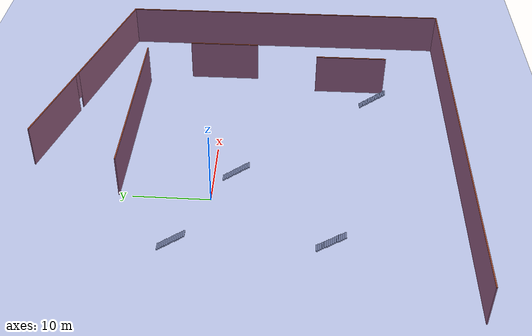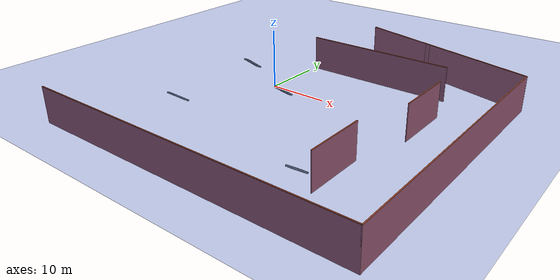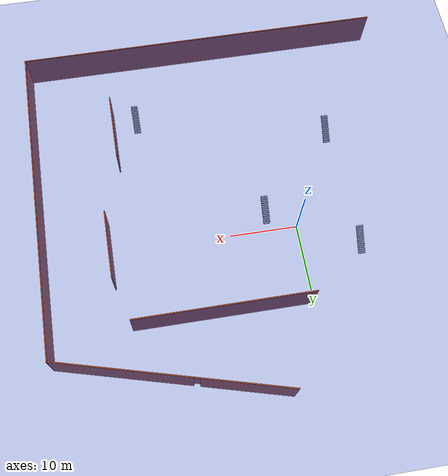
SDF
<sdf version="1.6">
 <world name="vrc_task_1">
  <model name="indoor2">
   <pose>9.73091 -3.78901 0 0 -0 0</pose>
   <link name="Stairs_5">
    <visual name="Stairs_5_Visual_0">
     <pose>-5.472 2.52937 0.083333 0 -0 0</pose>
     <geometry><box><size>1 0.233333 0.166667</size></box></geometry>
     <material>
      <script><uri>file://media/materials/scripts/gazebo.material</uri><name>Gazebo/Grey</name></script>
      <ambient>1 1 1 1</ambient>
     </material>
     <meta><layer>0</layer></meta>
    </visual>
    <collision name="Stairs_5_Collision_0">
     <geometry><box><size>1 0.233333 0.166667</size></box></geometry>
     <pose>-5.472 2.52937 0.083333 0 -0 0</pose>
    </collision>
    <visual name="Stairs_5_Visual_1">
     <pose>-5.472 2.29604 0.25 0 -0 0</pose>
     <geometry><box><size>1 0.233333 0.166667</size></box></geometry>
     <material>
      <script><uri>file://media/materials/scripts/gazebo.material</uri><name>Gazebo/Grey</name></script>
      <ambient>1 1 1 1</ambient>
     </material>
     <meta><layer>0</layer></meta>
    </visual>
    <collision name="Stairs_5_Collision_1">
     <geometry><box><size>1 0.233333 0.166667</size></box></geometry>
     <pose>-5.472 2.29604 0.25 0 -0 0</pose>
    </collision>
    <visual name="Stairs_5_Visual_2">
     <pose>-5.472 2.06271 0.416667 0 -0 0</pose>
     <geometry><box><size>1 0.233333 0.166667</size></box></geometry>
     <material>
      <script><uri>file://media/materials/scripts/gazebo.material</uri><name>Gazebo/Grey</name></script>
      <ambient>1 1 1 1</ambient>
     </material>
     <meta><layer>0</layer></meta>
    </visual>
    <collision name="Stairs_5_Collision_2">
     <geometry><box><size>1 0.233333 0.166667</size></box></geometry>
     <pose>-5.472 2.06271 0.416667 0 -0 0</pose>
    </collision>
    <visual name="Stairs_5_Visual_3">
     <pose>-5.472 1.82937 0.583333 0 -0 0</pose>
     <geometry><box><size>1 0.233333 0.166667</size></box></geometry>
     <material>
      <script><uri>file://media/materials/scripts/gazebo.material</uri><name>Gazebo/Grey</name></script>
      <ambient>1 1 1 1</ambient>
     </material>
     <meta><layer>0</layer></meta>
    </visual>
    <collision name="Stairs_5_Collision_3">
     <geometry><box><size>1 0.233333 0.166667</size></box></geometry>
     <pose>-5.472 1.82937 0.583333 0 -0 0</pose>
    </collision>
    <visual name="Stairs_5_Visual_4">
     <pose>-5.472 1.59604 0.75 0 -0 0</pose>
     <geometry><box><size>1 0.233333 0.166667</size></box></geometry>
     <material>
      <script><uri>file://media/materials/scripts/gazebo.material</uri><name>Gazebo/Grey</name></script>
      <ambient>1 1 1 1</ambient>
     </material>
     <meta><layer>0</layer></meta>
    </visual>
    <collision name="Stairs_5_Collision_4">
     <geometry><box><size>1 0.233333 0.166667</size></box></geometry>
     <pose>-5.472 1.59604 0.75 0 -0 0</pose>
    </collision>
    <visual name="Stairs_5_Visual_5">
     <pose>-5.472 1.36271 0.916667 0 -0 0</pose>
     <geometry><box><size>1 0.233333 0.166667</size></box></geometry>
     <material>
      <script><uri>file://media/materials/scripts/gazebo.material</uri><name>Gazebo/Grey</name></script>
      <ambient>1 1 1 1</ambient>
     </material>
     <meta><layer>0</layer></meta>
    </visual>
    <collision name="Stairs_5_Collision_5">
     <geometry><box><size>1 0.233333 0.166667</size></box></geometry>
     <pose>-5.472 1.36271 0.916667 0 -0 0</pose>
    </collision>
    <visual name="Stairs_5_Visual_6">
     <pose>-5.472 1.12938 1.08333 0 -0 0</pose>
     <geometry><box><size>1 0.233333 0.166667</size></box></geometry>
     <material>
      <script><uri>file://media/materials/scripts/gazebo.material</uri><name>Gazebo/Grey</name></script>
      <ambient>1 1 1 1</ambient>
     </material>
     <meta><layer>0</layer></meta>
    </visual>
    <collision name="Stairs_5_Collision_6">
     <geometry><box><size>1 0.233333 0.166667</size></box></geometry>
     <pose>-5.472 1.12938 1.08333 0 -0 0</pose>
    </collision>
    <visual name="Stairs_5_Visual_7">
     <pose>-5.472 0.896041 1.25 0 -0 0</pose>
     <geometry><box><size>1 0.233333 0.166667</size></box></geometry>
     <material>
      <script><uri>file://media/materials/scripts/gazebo.material</uri><name>Gazebo/Grey</name></script>
      <ambient>1 1 1 1</ambient>
     </material>
     <meta><layer>0</layer></meta>
    </visual>
    <collision name="Stairs_5_Collision_7">
     <geometry><box><size>1 0.233333 0.166667</size></box></geometry>
     <pose>-5.472 0.896041 1.25 0 -0 0</pose>
    </collision>
    <visual name="Stairs_5_Visual_8">
     <pose>-5.472 0.662708 1.41667 0 -0 0</pose>
     <geometry><box><size>1 0.233333 0.166667</size></box></geometry>
     <material>
      <script><uri>file://media/materials/scripts/gazebo.material</uri><name>Gazebo/Grey</name></script>
      <ambient>1 1 1 1</ambient>
     </material>
     <meta><layer>0</layer></meta>
    </visual>
    <collision name="Stairs_5_Collision_8">
     <geometry><box><size>1 0.233333 0.166667</size></box></geometry>
     <pose>-5.472 0.662708 1.41667 0 -0 0</pose>
    </collision>
    <visual name="Stairs_5_Visual_9">
     <pose>-5.472 0.429375 1.58333 0 -0 0</pose>
     <geometry><box><size>1 0.233333 0.166667</size></box></geometry>
     <material>
      <script><uri>file://media/materials/scripts/gazebo.material</uri><name>Gazebo/Grey</name></script>
      <ambient>1 1 1 1</ambient>
     </material>
     <meta><layer>0</layer></meta>
    </visual>
    <collision name="Stairs_5_Collision_9">
     <geometry><box><size>1 0.233333 0.166667</size></box></geometry>
     <pose>-5.472 0.429375 1.58333 0 -0 0</pose>
    </collision>
    <visual name="Stairs_5_Visual_10">
     <pose>-5.472 0.196041 1.75 0 -0 0</pose>
     <geometry><box><size>1 0.233333 0.166667</size></box></geometry>
     <material>
      <script><uri>file://media/materials/scripts/gazebo.material</uri><name>Gazebo/Grey</name></script>
      <ambient>1 1 1 1</ambient>
     </material>
     <meta><layer>0</layer></meta>
    </visual>
    <collision name="Stairs_5_Collision_10">
     <geometry><box><size>1 0.233333 0.166667</size></box></geometry>
     <pose>-5.472 0.196041 1.75 0 -0 0</pose>
    </collision>
    <visual name="Stairs_5_Visual_11">
     <pose>-5.472 -0.037292 1.91667 0 -0 0</pose>
     <geometry><box><size>1 0.233333 0.166667</size></box></geometry>
     <material>
      <script><uri>file://media/materials/scripts/gazebo.material</uri><name>Gazebo/Grey</name></script>
      <ambient>1 1 1 1</ambient>
     </material>
     <meta><layer>0</layer></meta>
    </visual>
    <collision name="Stairs_5_Collision_11">
     <geometry><box><size>1 0.233333 0.166667</size></box></geometry>
     <pose>-5.472 -0.037292 1.91667 0 -0 0</pose>
    </collision>
    <visual name="Stairs_5_Visual_12">
     <pose>-5.472 -0.270625 2.08333 0 -0 0</pose>
     <geometry><box><size>1 0.233333 0.166667</size></box></geometry>
     <material>
      <script><uri>file://media/materials/scripts/gazebo.material</uri><name>Gazebo/Grey</name></script>
      <ambient>1 1 1 1</ambient>
     </material>
     <meta><layer>0</layer></meta>
    </visual>
    <collision name="Stairs_5_Collision_12">
     <geometry><box><size>1 0.233333 0.166667</size></box></geometry>
     <pose>-5.472 -0.270625 2.08333 0 -0 0</pose>
    </collision>
    <visual name="Stairs_5_Visual_13">
     <pose>-5.472 -0.503959 2.25 0 -0 0</pose>
     <geometry><box><size>1 0.233333 0.166667</size></box></geometry>
     <material>
      <script><uri>file://media/materials/scripts/gazebo.material</uri><name>Gazebo/Grey</name></script>
      <ambient>1 1 1 1</ambient>
     </material>
     <meta><layer>0</layer></meta>
    </visual>
    <collision name="Stairs_5_Collision_13">
     <geometry><box><size>1 0.233333 0.166667</size></box></geometry>
     <pose>-5.472 -0.503959 2.25 0 -0 0</pose>
    </collision>
    <visual name="Stairs_5_Visual_14">
     <pose>-5.472 -0.737292 2.41667 0 -0 0</pose>
     <geometry><box><size>1 0.233333 0.166667</size></box></geometry>
     <material>
      <script><uri>file://media/materials/scripts/gazebo.material</uri><name>Gazebo/Grey</name></script>
      <ambient>1 1 1 1</ambient>
     </material>
     <meta><layer>0</layer></meta>
    </visual>
    <collision name="Stairs_5_Collision_14">
     <geometry><box><size>1 0.233333 0.166667</size></box></geometry>
     <pose>-5.472 -0.737292 2.41667 0 -0 0</pose>
    </collision>
   </link>
   <link name="Stairs_6">
    <visual name="Stairs_6_Visual_0">
     <pose>-18.3425 9.33587 0.083333 0 -0 0</pose>
     <geometry><box><size>1 0.233333 0.166667</size></box></geometry>
     <material>
      <script><uri>file://media/materials/scripts/gazebo.material</uri><name>Gazebo/Grey</name></script>
      <ambient>1 1 1 1</ambient>
     </material>
     <meta><layer>0</layer></meta>
    </visual>
    <collision name="Stairs_6_Collision_0">
     <geometry><box><size>1 0.233333 0.166667</size></box></geometry>
     <pose>-18.3425 9.33587 0.083333 0 -0 0</pose>
    </collision>
    <visual name="Stairs_6_Visual_1">
     <pose>-18.3425 9.10254 0.25 0 -0 0</pose>
     <geometry><box><size>1 0.233333 0.166667</size></box></geometry>
     <material>
      <script><uri>file://media/materials/scripts/gazebo.material</uri><name>Gazebo/Grey</name></script>
      <ambient>1 1 1 1</ambient>
     </material>
     <meta><layer>0</layer></meta>
    </visual>
    <collision name="Stairs_6_Collision_1">
     <geometry><box><size>1 0.233333 0.166667</size></box></geometry>
     <pose>-18.3425 9.10254 0.25 0 -0 0</pose>
    </collision>
    <visual name="Stairs_6_Visual_2">
     <pose>-18.3425 8.86921 0.416667 0 -0 0</pose>
     <geometry><box><size>1 0.233333 0.166667</size></box></geometry>
     <material>
      <script><uri>file://media/materials/scripts/gazebo.material</uri><name>Gazebo/Grey</name></script>
      <ambient>1 1 1 1</ambient>
     </material>
     <meta><layer>0</layer></meta>
    </visual>
    <collision name="Stairs_6_Collision_2">
     <geometry><box><size>1 0.233333 0.166667</size></box></geometry>
     <pose>-18.3425 8.86921 0.416667 0 -0 0</pose>
    </collision>
    <visual name="Stairs_6_Visual_3">
     <pose>-18.3425 8.63587 0.583333 0 -0 0</pose>
     <geometry><box><size>1 0.233333 0.166667</size></box></geometry>
     <material>
      <script><uri>file://media/materials/scripts/gazebo.material</uri><name>Gazebo/Grey</name></script>
      <ambient>1 1 1 1</ambient>
     </material>
     <meta><layer>0</layer></meta>
    </visual>
    <collision name="Stairs_6_Collision_3">
     <geometry><box><size>1 0.233333 0.166667</size></box></geometry>
     <pose>-18.3425 8.63587 0.583333 0 -0 0</pose>
    </collision>
    <visual name="Stairs_6_Visual_4">
     <pose>-18.3425 8.40254 0.75 0 -0 0</pose>
     <geometry><box><size>1 0.233333 0.166667</size></box></geometry>
     <material>
      <script><uri>file://media/materials/scripts/gazebo.material</uri><name>Gazebo/Grey</name></script>
      <ambient>1 1 1 1</ambient>
     </material>
     <meta><layer>0</layer></meta>
    </visual>
    <collision name="Stairs_6_Collision_4">
     <geometry><box><size>1 0.233333 0.166667</size></box></geometry>
     <pose>-18.3425 8.40254 0.75 0 -0 0</pose>
    </collision>
    <visual name="Stairs_6_Visual_5">
     <pose>-18.3425 8.16921 0.916667 0 -0 0</pose>
     <geometry><box><size>1 0.233333 0.166667</size></box></geometry>
     <material>
      <script><uri>file://media/materials/scripts/gazebo.material</uri><name>Gazebo/Grey</name></script>
      <ambient>1 1 1 1</ambient>
     </material>
     <meta><layer>0</layer></meta>
    </visual>
    <collision name="Stairs_6_Collision_5">
     <geometry><box><size>1 0.233333 0.166667</size></box></geometry>
     <pose>-18.3425 8.16921 0.916667 0 -0 0</pose>
    </collision>
    <visual name="Stairs_6_Visual_6">
     <pose>-18.3425 7.93587 1.08333 0 -0 0</pose>
     <geometry><box><size>1 0.233333 0.166667</size></box></geometry>
     <material>
      <script><uri>file://media/materials/scripts/gazebo.material</uri><name>Gazebo/Grey</name></script>
      <ambient>1 1 1 1</ambient>
     </material>
     <meta><layer>0</layer></meta>
    </visual>
    <collision name="Stairs_6_Collision_6">
     <geometry><box><size>1 0.233333 0.166667</size></box></geometry>
     <pose>-18.3425 7.93587 1.08333 0 -0 0</pose>
    </collision>
    <visual name="Stairs_6_Visual_7">
     <pose>-18.3425 7.70254 1.25 0 -0 0</pose>
     <geometry><box><size>1 0.233333 0.166667</size></box></geometry>
     <material>
      <script><uri>file://media/materials/scripts/gazebo.material</uri><name>Gazebo/Grey</name></script>
      <ambient>1 1 1 1</ambient>
     </material>
     <meta><layer>0</layer></meta>
    </visual>
    <collision name="Stairs_6_Collision_7">
     <geometry><box><size>1 0.233333 0.166667</size></box></geometry>
     <pose>-18.3425 7.70254 1.25 0 -0 0</pose>
    </collision>
    <visual name="Stairs_6_Visual_8">
     <pose>-18.3425 7.46921 1.41667 0 -0 0</pose>
     <geometry><box><size>1 0.233333 0.166667</size></box></geometry>
     <material>
      <script><uri>file://media/materials/scripts/gazebo.material</uri><name>Gazebo/Grey</name></script>
      <ambient>1 1 1 1</ambient>
     </material>
     <meta><layer>0</layer></meta>
    </visual>
    <collision name="Stairs_6_Collision_8">
     <geometry><box><size>1 0.233333 0.166667</size></box></geometry>
     <pose>-18.3425 7.46921 1.41667 0 -0 0</pose>
    </collision>
    <visual name="Stairs_6_Visual_9">
     <pose>-18.3425 7.23587 1.58333 0 -0 0</pose>
     <geometry><box><size>1 0.233333 0.166667</size></box></geometry>
     <material>
      <script><uri>file://media/materials/scripts/gazebo.material</uri><name>Gazebo/Grey</name></script>
      <ambient>1 1 1 1</ambient>
     </material>
     <meta><layer>0</layer></meta>
    </visual>
    <collision name="Stairs_6_Collision_9">
     <geometry><box><size>1 0.233333 0.166667</size></box></geometry>
     <pose>-18.3425 7.23587 1.58333 0 -0 0</pose>
    </collision>
    <visual name="Stairs_6_Visual_10">
     <pose>-18.3425 7.00254 1.75 0 -0 0</pose>
     <geometry><box><size>1 0.233333 0.166667</size></box></geometry>
     <material>
      <script><uri>file://media/materials/scripts/gazebo.material</uri><name>Gazebo/Grey</name></script>
      <ambient>1 1 1 1</ambient>
     </material>
     <meta><layer>0</layer></meta>
    </visual>
    <collision name="Stairs_6_Collision_10">
     <geometry><box><size>1 0.233333 0.166667</size></box></geometry>
     <pose>-18.3425 7.00254 1.75 0 -0 0</pose>
    </collision>
    <visual name="Stairs_6_Visual_11">
     <pose>-18.3425 6.76921 1.91667 0 -0 0</pose>
     <geometry><box><size>1 0.233333 0.166667</size></box></geometry>
     <material>
      <script><uri>file://media/materials/scripts/gazebo.material</uri><name>Gazebo/Grey</name></script>
      <ambient>1 1 1 1</ambient>
     </material>
     <meta><layer>0</layer></meta>
    </visual>
    <collision name="Stairs_6_Collision_11">
     <geometry><box><size>1 0.233333 0.166667</size></box></geometry>
     <pose>-18.3425 6.76921 1.91667 0 -0 0</pose>
    </collision>
    <visual name="Stairs_6_Visual_12">
     <pose>-18.3425 6.53587 2.08333 0 -0 0</pose>
     <geometry><box><size>1 0.233333 0.166667</size></box></geometry>
     <material>
      <script><uri>file://media/materials/scripts/gazebo.material</uri><name>Gazebo/Grey</name></script>
      <ambient>1 1 1 1</ambient>
     </material>
     <meta><layer>0</layer></meta>
    </visual>
    <collision name="Stairs_6_Collision_12">
     <geometry><box><size>1 0.233333 0.166667</size></box></geometry>
     <pose>-18.3425 6.53587 2.08333 0 -0 0</pose>
    </collision>
    <visual name="Stairs_6_Visual_13">
     <pose>-18.3425 6.30254 2.25 0 -0 0</pose>
     <geometry><box><size>1 0.233333 0.166667</size></box></geometry>
     <material>
      <script><uri>file://media/materials/scripts/gazebo.material</uri><name>Gazebo/Grey</name></script>
      <ambient>1 1 1 1</ambient>
     </material>
     <meta><layer>0</layer></meta>
    </visual>
    <collision name="Stairs_6_Collision_13">
     <geometry><box><size>1 0.233333 0.166667</size></box></geometry>
     <pose>-18.3425 6.30254 2.25 0 -0 0</pose>
    </collision>
    <visual name="Stairs_6_Visual_14">
     <pose>-18.3425 6.06921 2.41667 0 -0 0</pose>
     <geometry><box><size>1 0.233333 0.166667</size></box></geometry>
     <material>
      <script><uri>file://media/materials/scripts/gazebo.material</uri><name>Gazebo/Grey</name></script>
      <ambient>1 1 1 1</ambient>
     </material>
     <meta><layer>0</layer></meta>
    </visual>
    <collision name="Stairs_6_Collision_14">
     <geometry><box><size>1 0.233333 0.166667</size></box></geometry>
     <pose>-18.3425 6.06921 2.41667 0 -0 0</pose>
    </collision>
   </link>
   <link name="Stairs_7">
    <visual name="Stairs_7_Visual_0">
     <pose>-17.4762 -9.59857 0.083333 0 -0 0</pose>
     <geometry><box><size>1 0.233333 0.166667</size></box></geometry>
     <material>
      <script><uri>file://media/materials/scripts/gazebo.material</uri><name>Gazebo/Grey</name></script>
      <ambient>1 1 1 1</ambient>
     </material>
     <meta><layer>0</layer></meta>
    </visual>
    <collision name="Stairs_7_Collision_0">
     <geometry><box><size>1 0.233333 0.166667</size></box></geometry>
     <pose>-17.4762 -9.59857 0.083333 0 -0 0</pose>
    </collision>
    <visual name="Stairs_7_Visual_1">
     <pose>-17.4762 -9.8319 0.25 0 -0 0</pose>
     <geometry><box><size>1 0.233333 0.166667</size></box></geometry>
     <material>
      <script><uri>file://media/materials/scripts/gazebo.material</uri><name>Gazebo/Grey</name></script>
      <ambient>1 1 1 1</ambient>
     </material>
     <meta><layer>0</layer></meta>
    </visual>
    <collision name="Stairs_7_Collision_1">
     <geometry><box><size>1 0.233333 0.166667</size></box></geometry>
     <pose>-17.4762 -9.8319 0.25 0 -0 0</pose>
    </collision>
    <visual name="Stairs_7_Visual_2">
     <pose>-17.4762 -10.0652 0.416667 0 -0 0</pose>
     <geometry><box><size>1 0.233333 0.166667</size></box></geometry>
     <material>
      <script><uri>file://media/materials/scripts/gazebo.material</uri><name>Gazebo/Grey</name></script>
      <ambient>1 1 1 1</ambient>
     </material>
     <meta><layer>0</layer></meta>
    </visual>
    <collision name="Stairs_7_Collision_2">
     <geometry><box><size>1 0.233333 0.166667</size></box></geometry>
     <pose>-17.4762 -10.0652 0.416667 0 -0 0</pose>
    </collision>
    <visual name="Stairs_7_Visual_3">
     <pose>-17.4762 -10.2986 0.583333 0 -0 0</pose>
     <geometry><box><size>1 0.233333 0.166667</size></box></geometry>
     <material>
      <script><uri>file://media/materials/scripts/gazebo.material</uri><name>Gazebo/Grey</name></script>
      <ambient>1 1 1 1</ambient>
     </material>
     <meta><layer>0</layer></meta>
    </visual>
    <collision name="Stairs_7_Collision_3">
     <geometry><box><size>1 0.233333 0.166667</size></box></geometry>
     <pose>-17.4762 -10.2986 0.583333 0 -0 0</pose>
    </collision>
    <visual name="Stairs_7_Visual_4">
     <pose>-17.4762 -10.5319 0.75 0 -0 0</pose>
     <geometry><box><size>1 0.233333 0.166667</size></box></geometry>
     <material>
      <script><uri>file://media/materials/scripts/gazebo.material</uri><name>Gazebo/Grey</name></script>
      <ambient>1 1 1 1</ambient>
     </material>
     <meta><layer>0</layer></meta>
    </visual>
    <collision name="Stairs_7_Collision_4">
     <geometry><box><size>1 0.233333 0.166667</size></box></geometry>
     <pose>-17.4762 -10.5319 0.75 0 -0 0</pose>
    </collision>
    <visual name="Stairs_7_Visual_5">
     <pose>-17.4762 -10.7652 0.916667 0 -0 0</pose>
     <geometry><box><size>1 0.233333 0.166667</size></box></geometry>
     <material>
      <script><uri>file://media/materials/scripts/gazebo.material</uri><name>Gazebo/Grey</name></script>
      <ambient>1 1 1 1</ambient>
     </material>
     <meta><layer>0</layer></meta>
    </visual>
    <collision name="Stairs_7_Collision_5">
     <geometry><box><size>1 0.233333 0.166667</size></box></geometry>
     <pose>-17.4762 -10.7652 0.916667 0 -0 0</pose>
    </collision>
    <visual name="Stairs_7_Visual_6">
     <pose>-17.4762 -10.9986 1.08333 0 -0 0</pose>
     <geometry><box><size>1 0.233333 0.166667</size></box></geometry>
     <material>
      <script><uri>file://media/materials/scripts/gazebo.material</uri><name>Gazebo/Grey</name></script>
      <ambient>1 1 1 1</ambient>
     </material>
     <meta><layer>0</layer></meta>
    </visual>
    <collision name="Stairs_7_Collision_6">
     <geometry><box><size>1 0.233333 0.166667</size></box></geometry>
     <pose>-17.4762 -10.9986 1.08333 0 -0 0</pose>
    </collision>
    <visual name="Stairs_7_Visual_7">
     <pose>-17.4762 -11.2319 1.25 0 -0 0</pose>
     <geometry><box><size>1 0.233333 0.166667</size></box></geometry>
     <material>
      <script><uri>file://media/materials/scripts/gazebo.material</uri><name>Gazebo/Grey</name></script>
      <ambient>1 1 1 1</ambient>
     </material>
     <meta><layer>0</layer></meta>
    </visual>
    <collision name="Stairs_7_Collision_7">
     <geometry><box><size>1 0.233333 0.166667</size></box></geometry>
     <pose>-17.4762 -11.2319 1.25 0 -0 0</pose>
    </collision>
    <visual name="Stairs_7_Visual_8">
     <pose>-17.4762 -11.4652 1.41667 0 -0 0</pose>
     <geometry><box><size>1 0.233333 0.166667</size></box></geometry>
     <material>
      <script><uri>file://media/materials/scripts/gazebo.material</uri><name>Gazebo/Grey</name></script>
      <ambient>1 1 1 1</ambient>
     </material>
     <meta><layer>0</layer></meta>
    </visual>
    <collision name="Stairs_7_Collision_8">
     <geometry><box><size>1 0.233333 0.166667</size></box></geometry>
     <pose>-17.4762 -11.4652 1.41667 0 -0 0</pose>
    </collision>
    <visual name="Stairs_7_Visual_9">
     <pose>-17.4762 -11.6986 1.58333 0 -0 0</pose>
     <geometry><box><size>1 0.233333 0.166667</size></box></geometry>
     <material>
      <script><uri>file://media/materials/scripts/gazebo.material</uri><name>Gazebo/Grey</name></script>
      <ambient>1 1 1 1</ambient>
     </material>
     <meta><layer>0</layer></meta>
    </visual>
    <collision name="Stairs_7_Collision_9">
     <geometry><box><size>1 0.233333 0.166667</size></box></geometry>
     <pose>-17.4762 -11.6986 1.58333 0 -0 0</pose>
    </collision>
    <visual name="Stairs_7_Visual_10">
     <pose>-17.4762 -11.9319 1.75 0 -0 0</pose>
     <geometry><box><size>1 0.233333 0.166667</size></box></geometry>
     <material>
      <script><uri>file://media/materials/scripts/gazebo.material</uri><name>Gazebo/Grey</name></script>
      <ambient>1 1 1 1</ambient>
     </material>
     <meta><layer>0</layer></meta>
    </visual>
    <collision name="Stairs_7_Collision_10">
     <geometry><box><size>1 0.233333 0.166667</size></box></geometry>
     <pose>-17.4762 -11.9319 1.75 0 -0 0</pose>
    </collision>
    <visual name="Stairs_7_Visual_11">
     <pose>-17.4762 -12.1652 1.91667 0 -0 0</pose>
     <geometry><box><size>1 0.233333 0.166667</size></box></geometry>
     <material>
      <script><uri>file://media/materials/scripts/gazebo.material</uri><name>Gazebo/Grey</name></script>
      <ambient>1 1 1 1</ambient>
     </material>
     <meta><layer>0</layer></meta>
    </visual>
    <collision name="Stairs_7_Collision_11">
     <geometry><box><size>1 0.233333 0.166667</size></box></geometry>
     <pose>-17.4762 -12.1652 1.91667 0 -0 0</pose>
    </collision>
    <visual name="Stairs_7_Visual_12">
     <pose>-17.4762 -12.3986 2.08333 0 -0 0</pose>
     <geometry><box><size>1 0.233333 0.166667</size></box></geometry>
     <material>
      <script><uri>file://media/materials/scripts/gazebo.material</uri><name>Gazebo/Grey</name></script>
      <ambient>1 1 1 1</ambient>
     </material>
     <meta><layer>0</layer></meta>
    </visual>
    <collision name="Stairs_7_Collision_12">
     <geometry><box><size>1 0.233333 0.166667</size></box></geometry>
     <pose>-17.4762 -12.3986 2.08333 0 -0 0</pose>
    </collision>
    <visual name="Stairs_7_Visual_13">
     <pose>-17.4762 -12.6319 2.25 0 -0 0</pose>
     <geometry><box><size>1 0.233333 0.166667</size></box></geometry>
     <material>
      <script><uri>file://media/materials/scripts/gazebo.material</uri><name>Gazebo/Grey</name></script>
      <ambient>1 1 1 1</ambient>
     </material>
     <meta><layer>0</layer></meta>
    </visual>
    <collision name="Stairs_7_Collision_13">
     <geometry><box><size>1 0.233333 0.166667</size></box></geometry>
     <pose>-17.4762 -12.6319 2.25 0 -0 0</pose>
    </collision>
    <visual name="Stairs_7_Visual_14">
     <pose>-17.4762 -12.8652 2.41667 0 -0 0</pose>
     <geometry><box><size>1 0.233333 0.166667</size></box></geometry>
     <material>
      <script><uri>file://media/materials/scripts/gazebo.material</uri><name>Gazebo/Grey</name></script>
      <ambient>1 1 1 1</ambient>
     </material>
     <meta><layer>0</layer></meta>
    </visual>
    <collision name="Stairs_7_Collision_14">
     <geometry><box><size>1 0.233333 0.166667</size></box></geometry>
     <pose>-17.4762 -12.8652 2.41667 0 -0 0</pose>
    </collision>
   </link>
   <link name="Stairs_8">
    <visual name="Stairs_8_Visual_0">
     <pose>11.7299 -15.9101 0.083333 0 -0 0</pose>
     <geometry><box><size>1 0.233333 0.166667</size></box></geometry>
     <material>
      <script><uri>file://media/materials/scripts/gazebo.material</uri><name>Gazebo/Grey</name></script>
      <ambient>1 1 1 1</ambient>
     </material>
     <meta><layer>0</layer></meta>
    </visual>
    <collision name="Stairs_8_Collision_0">
     <geometry><box><size>1 0.233333 0.166667</size></box></geometry>
     <pose>11.7299 -15.9101 0.083333 0 -0 0</pose>
    </collision>
    <visual name="Stairs_8_Visual_1">
     <pose>11.7299 -16.1434 0.25 0 -0 0</pose>
     <geometry><box><size>1 0.233333 0.166667</size></box></geometry>
     <material>
      <script><uri>file://media/materials/scripts/gazebo.material</uri><name>Gazebo/Grey</name></script>
      <ambient>1 1 1 1</ambient>
     </material>
     <meta><layer>0</layer></meta>
    </visual>
    <collision name="Stairs_8_Collision_1">
     <geometry><box><size>1 0.233333 0.166667</size></box></geometry>
     <pose>11.7299 -16.1434 0.25 0 -0 0</pose>
    </collision>
    <visual name="Stairs_8_Visual_2">
     <pose>11.7299 -16.3767 0.416667 0 -0 0</pose>
     <geometry><box><size>1 0.233333 0.166667</size></box></geometry>
     <material>
      <script><uri>file://media/materials/scripts/gazebo.material</uri><name>Gazebo/Grey</name></script>
      <ambient>1 1 1 1</ambient>
     </material>
     <meta><layer>0</layer></meta>
    </visual>
    <collision name="Stairs_8_Collision_2">
     <geometry><box><size>1 0.233333 0.166667</size></box></geometry>
     <pose>11.7299 -16.3767 0.416667 0 -0 0</pose>
    </collision>
    <visual name="Stairs_8_Visual_3">
     <pose>11.7299 -16.6101 0.583333 0 -0 0</pose>
     <geometry><box><size>1 0.233333 0.166667</size></box></geometry>
     <material>
      <script><uri>file://media/materials/scripts/gazebo.material</uri><name>Gazebo/Grey</name></script>
      <ambient>1 1 1 1</ambient>
     </material>
     <meta><layer>0</layer></meta>
    </visual>
    <collision name="Stairs_8_Collision_3">
     <geometry><box><size>1 0.233333 0.166667</size></box></geometry>
     <pose>11.7299 -16.6101 0.583333 0 -0 0</pose>
    </collision>
    <visual name="Stairs_8_Visual_4">
     <pose>11.7299 -16.8434 0.75 0 -0 0</pose>
     <geometry><box><size>1 0.233333 0.166667</size></box></geometry>
     <material>
      <script><uri>file://media/materials/scripts/gazebo.material</uri><name>Gazebo/Grey</name></script>
      <ambient>1 1 1 1</ambient>
     </material>
     <meta><layer>0</layer></meta>
    </visual>
    <collision name="Stairs_8_Collision_4">
     <geometry><box><size>1 0.233333 0.166667</size></box></geometry>
     <pose>11.7299 -16.8434 0.75 0 -0 0</pose>
    </collision>
    <visual name="Stairs_8_Visual_5">
     <pose>11.7299 -17.0767 0.916667 0 -0 0</pose>
     <geometry><box><size>1 0.233333 0.166667</size></box></geometry>
     <material>
      <script><uri>file://media/materials/scripts/gazebo.material</uri><name>Gazebo/Grey</name></script>
      <ambient>1 1 1 1</ambient>
     </material>
     <meta><layer>0</layer></meta>
    </visual>
    <collision name="Stairs_8_Collision_5">
     <geometry><box><size>1 0.233333 0.166667</size></box></geometry>
     <pose>11.7299 -17.0767 0.916667 0 -0 0</pose>
    </collision>
    <visual name="Stairs_8_Visual_6">
     <pose>11.7299 -17.3101 1.08333 0 -0 0</pose>
     <geometry><box><size>1 0.233333 0.166667</size></box></geometry>
     <material>
      <script><uri>file://media/materials/scripts/gazebo.material</uri><name>Gazebo/Grey</name></script>
      <ambient>1 1 1 1</ambient>
     </material>
     <meta><layer>0</layer></meta>
    </visual>
    <collision name="Stairs_8_Collision_6">
     <geometry><box><size>1 0.233333 0.166667</size></box></geometry>
     <pose>11.7299 -17.3101 1.08333 0 -0 0</pose>
    </collision>
    <visual name="Stairs_8_Visual_7">
     <pose>11.7299 -17.5434 1.25 0 -0 0</pose>
     <geometry><box><size>1 0.233333 0.166667</size></box></geometry>
     <material>
      <script><uri>file://media/materials/scripts/gazebo.material</uri><name>Gazebo/Grey</name></script>
      <ambient>1 1 1 1</ambient>
     </material>
     <meta><layer>0</layer></meta>
    </visual>
    <collision name="Stairs_8_Collision_7">
     <geometry><box><size>1 0.233333 0.166667</size></box></geometry>
     <pose>11.7299 -17.5434 1.25 0 -0 0</pose>
    </collision>
    <visual name="Stairs_8_Visual_8">
     <pose>11.7299 -17.7767 1.41667 0 -0 0</pose>
     <geometry><box><size>1 0.233333 0.166667</size></box></geometry>
     <material>
      <script><uri>file://media/materials/scripts/gazebo.material</uri><name>Gazebo/Grey</name></script>
      <ambient>1 1 1 1</ambient>
     </material>
     <meta><layer>0</layer></meta>
    </visual>
    <collision name="Stairs_8_Collision_8">
     <geometry><box><size>1 0.233333 0.166667</size></box></geometry>
     <pose>11.7299 -17.7767 1.41667 0 -0 0</pose>
    </collision>
    <visual name="Stairs_8_Visual_9">
     <pose>11.7299 -18.0101 1.58333 0 -0 0</pose>
     <geometry><box><size>1 0.233333 0.166667</size></box></geometry>
     <material>
      <script><uri>file://media/materials/scripts/gazebo.material</uri><name>Gazebo/Grey</name></script>
      <ambient>1 1 1 1</ambient>
     </material>
     <meta><layer>0</layer></meta>
    </visual>
    <collision name="Stairs_8_Collision_9">
     <geometry><box><size>1 0.233333 0.166667</size></box></geometry>
     <pose>11.7299 -18.0101 1.58333 0 -0 0</pose>
    </collision>
    <visual name="Stairs_8_Visual_10">
     <pose>11.7299 -18.2434 1.75 0 -0 0</pose>
     <geometry><box><size>1 0.233333 0.166667</size></box></geometry>
     <material>
      <script><uri>file://media/materials/scripts/gazebo.material</uri><name>Gazebo/Grey</name></script>
      <ambient>1 1 1 1</ambient>
     </material>
     <meta><layer>0</layer></meta>
    </visual>
    <collision name="Stairs_8_Collision_10">
     <geometry><box><size>1 0.233333 0.166667</size></box></geometry>
     <pose>11.7299 -18.2434 1.75 0 -0 0</pose>
    </collision>
    <visual name="Stairs_8_Visual_11">
     <pose>11.7299 -18.4767 1.91667 0 -0 0</pose>
     <geometry><box><size>1 0.233333 0.166667</size></box></geometry>
     <material>
      <script><uri>file://media/materials/scripts/gazebo.material</uri><name>Gazebo/Grey</name></script>
      <ambient>1 1 1 1</ambient>
     </material>
     <meta><layer>0</layer></meta>
    </visual>
    <collision name="Stairs_8_Collision_11">
     <geometry><box><size>1 0.233333 0.166667</size></box></geometry>
     <pose>11.7299 -18.4767 1.91667 0 -0 0</pose>
    </collision>
    <visual name="Stairs_8_Visual_12">
     <pose>11.7299 -18.7101 2.08333 0 -0 0</pose>
     <geometry><box><size>1 0.233333 0.166667</size></box></geometry>
     <material>
      <script><uri>file://media/materials/scripts/gazebo.material</uri><name>Gazebo/Grey</name></script>
      <ambient>1 1 1 1</ambient>
     </material>
     <meta><layer>0</layer></meta>
    </visual>
    <collision name="Stairs_8_Collision_12">
     <geometry><box><size>1 0.233333 0.166667</size></box></geometry>
     <pose>11.7299 -18.7101 2.08333 0 -0 0</pose>
    </collision>
    <visual name="Stairs_8_Visual_13">
     <pose>11.7299 -18.9434 2.25 0 -0 0</pose>
     <geometry><box><size>1 0.233333 0.166667</size></box></geometry>
     <material>
      <script><uri>file://media/materials/scripts/gazebo.material</uri><name>Gazebo/Grey</name></script>
      <ambient>1 1 1 1</ambient>
     </material>
     <meta><layer>0</layer></meta>
    </visual>
    <collision name="Stairs_8_Collision_13">
     <geometry><box><size>1 0.233333 0.166667</size></box></geometry>
     <pose>11.7299 -18.9434 2.25 0 -0 0</pose>
    </collision>
    <visual name="Stairs_8_Visual_14">
     <pose>11.7299 -19.1767 2.41667 0 -0 0</pose>
     <geometry><box><size>1 0.233333 0.166667</size></box></geometry>
     <material>
      <script><uri>file://media/materials/scripts/gazebo.material</uri><name>Gazebo/Grey</name></script>
      <ambient>1 1 1 1</ambient>
     </material>
     <meta><layer>0</layer></meta>
    </visual>
    <collision name="Stairs_8_Collision_14">
     <geometry><box><size>1 0.233333 0.166667</size></box></geometry>
     <pose>11.7299 -19.1767 2.41667 0 -0 0</pose>
    </collision>
   </link>
   <link name="Wall_1">
    <collision name="Wall_1_Collision">
     <geometry><box><size>55.25 0.15 6</size></box></geometry>
     <pose>0 0 3 0 -0 0</pose>
    </collision>
    <visual name="Wall_1_Visual">
     <pose>0 0 3 0 -0 0</pose>
     <geometry><box><size>55.25 0.15 6</size></box></geometry>
     <material>
      <script><uri>file://media/materials/scripts/gazebo.material</uri><name>Gazebo/Bricks</name></script>
      <ambient>1 1 1 1</ambient>
     </material>
     <meta><layer>0</layer></meta>
    </visual>
    <pose>0.0098 -27.9375 0 0 -0 0</pose>
   </link>
   <link name="Wall_13">
    <collision name="Wall_13_Collision">
     <geometry><box><size>10 0.15 6</size></box></geometry>
     <pose>0 0 3 0 -0 0</pose>
    </collision>
    <visual name="Wall_13_Visual">
     <pose>0 0 3 0 -0 0</pose>
     <geometry><box><size>10 0.15 6</size></box></geometry>
     <material>
      <script><uri>file://media/materials/scripts/gazebo.material</uri><name>Gazebo/Bricks</name></script>
      <ambient>1 1 1 1</ambient>
     </material>
     <meta><layer>0</layer></meta>
    </visual>
    <pose>17.9758 4.3495 0 0 -0 1.5708</pose>
   </link>
   <link name="Wall_18">
    <collision name="Wall_18_Collision">
     <geometry><box><size>25.75 0.15 6</size></box></geometry>
     <pose>0 0 3 0 -0 0</pose>
    </collision>
    <visual name="Wall_18_Visual">
     <pose>0 0 3 0 -0 0</pose>
     <geometry><box><size>25.75 0.15 6</size></box></geometry>
     <material>
      <script><uri>file://media/materials/scripts/gazebo.material</uri><name>Gazebo/Bricks</name></script>
      <ambient>1 1 1 1</ambient>
     </material>
     <meta><layer>0</layer></meta>
    </visual>
    <pose>3.3508 15.6065 0 0 -0 0</pose>
   </link>
   <link name="Wall_2">
    <collision name="Wall_2_Collision">
     <geometry><box><size>47.5 0.15 6</size></box></geometry>
     <pose>0 0 3 0 -0 0</pose>
    </collision>
    <visual name="Wall_2_Visual">
     <pose>0 0 3 0 -0 0</pose>
     <geometry><box><size>47.5 0.15 6</size></box></geometry>
     <material>
      <script><uri>file://media/materials/scripts/gazebo.material</uri><name>Gazebo/Bricks</name></script>
      <ambient>1 1 1 1</ambient>
     </material>
     <meta><layer>0</layer></meta>
    </visual>
    <pose>27.5598 -4.2625 0 0 -0 1.5708</pose>
   </link>
   <link name="Wall_3">
    <pose>11.6948 23.6635 0 0 -0 2.87979</pose>
    <visual name="Wall_3_Visual_0">
     <pose>-6.85323 0 3 0 -0 0</pose>
     <geometry><box><size>19.2935 0.15 6</size></box></geometry>
     <material>
      <script><uri>file://media/materials/scripts/gazebo.material</uri><name>Gazebo/Bricks</name></script>
      <ambient>1 1 1 1</ambient>
     </material>
     <meta><layer>0</layer></meta>
    </visual>
    <collision name="Wall_3_Collision_0">
     <geometry><box><size>19.2935 0.15 6</size></box></geometry>
     <pose>-6.85323 0 3 0 -0 0</pose>
    </collision>
    <visual name="Wall_3_Visual_1">
     <pose>10.0968 0 3 0 -0 0</pose>
     <geometry><box><size>12.8065 0.15 6</size></box></geometry>
     <material>
      <script><uri>file://media/materials/scripts/gazebo.material</uri><name>Gazebo/Bricks</name></script>
      <ambient>1 1 1 1</ambient>
     </material>
     <meta><layer>0</layer></meta>
    </visual>
    <collision name="Wall_3_Collision_1">
     <geometry><box><size>12.8065 0.15 6</size></box></geometry>
     <pose>10.0968 0 3 0 -0 0</pose>
    </collision>
    <visual name="Wall_3_Visual_2">
     <pose>3.24353 0 4 0 -0 0</pose>
     <geometry><box><size>0.9 0.15 4</size></box></geometry>
     <material>
      <script><uri>file://media/materials/scripts/gazebo.material</uri><name>Gazebo/Bricks</name></script>
      <ambient>1 1 1 1</ambient>
     </material>
     <meta><layer>0</layer></meta>
    </visual>
    <collision name="Wall_3_Collision_2">
     <geometry><box><size>0.9 0.15 4</size></box></geometry>
     <pose>3.24353 0 4 0 -0 0</pose>
    </collision>
   </link>
   <link name="Wall_9">
    <collision name="Wall_9_Collision">
     <geometry><box><size>10 0.15 6</size></box></geometry>
     <pose>0 0 3 0 -0 0</pose>
    </collision>
    <visual name="Wall_9_Visual">
     <pose>0 0 3 0 -0 0</pose>
     <geometry><box><size>10 0.15 6</size></box></geometry>
     <material>
      <script><uri>file://media/materials/scripts/gazebo.material</uri><name>Gazebo/Bricks</name></script>
      <ambient>1 1 1 1</ambient>
     </material>
     <meta><layer>0</layer></meta>
    </visual>
    <pose>15.2258 -14.3505 0 0 -0 1.5708</pose>
   </link>
   <static>1</static>
  </model>
  <model name="ground_plane">
   <static>1</static>
   <link name="link">
    <collision name="collision">
     <geometry><plane><normal>0 0 1</normal><size>100 100</size></plane></geometry>
     <surface>
      <contact><collide_bitmask>65535</collide_bitmask></contact>
      <friction><ode><mu>100</mu><mu2>50</mu2></ode></friction>
     </surface>
    </collision>
    <visual name="visual">
     <cast_shadows>0</cast_shadows>
     <geometry><plane><normal>0 0 1</normal><size>100 100</size></plane></geometry>
     <material>
      <script><uri>file://media/materials/scripts/gazebo.material</uri><name>Gazebo/BlueTransparent</name></script>
     </material>
    </visual>
   </link>
   <pose>6.40711 -7.3289 6 0 -0 0</pose>
  </model>
 </world>
</sdf>
